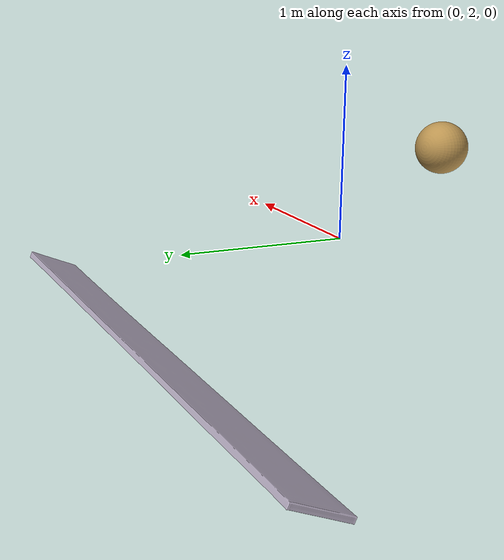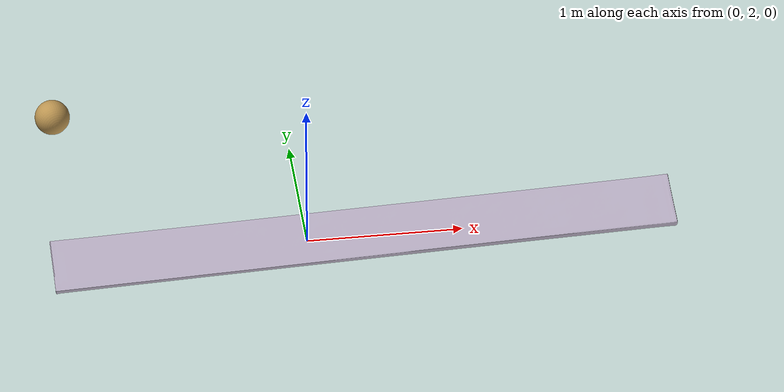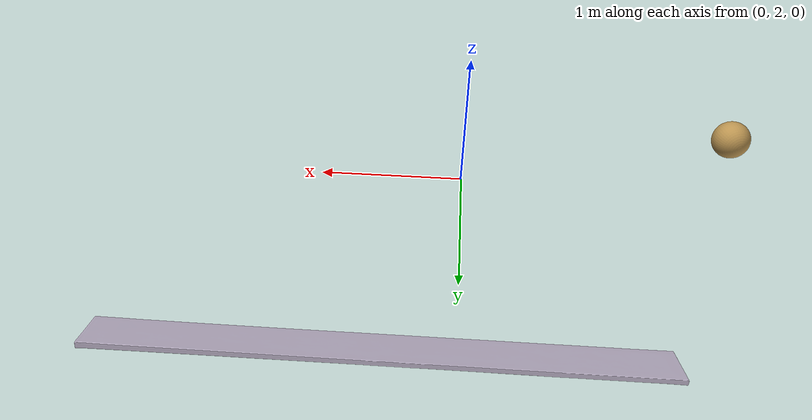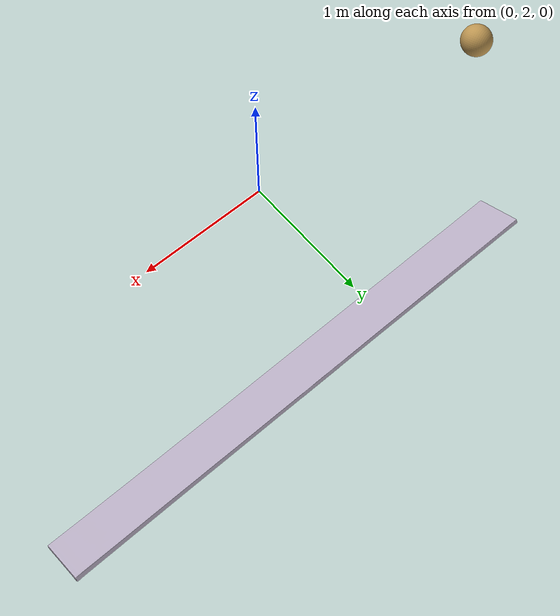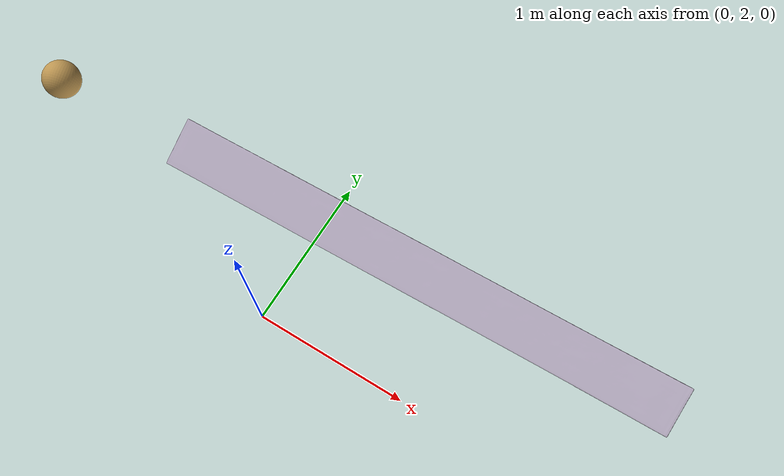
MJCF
<?xml version="1.0" encoding="utf-8"?>
<mujoco model="evolving_real2sim_scene">
  <compiler angle="radian" autolimits="true" balanceinertia="true"/>
  <option timestep="0.001" gravity="0 0 -9.22870497334" integrator="implicitfast" iterations="100"/>
  <visual>
    <global offwidth="960" offheight="540"/>
  </visual>
  <default>
    <geom condim="4" friction="0.6 0.01 0.001" solref="0.01 1"/>
  </default>
  <asset>
    <mesh name="ball_visual_mesh" file="assets/ball.obj" scale="0.896315557906 0.896315557906 0.896315557906"/>
    <mesh name="floor_visual_mesh" file="assets/floor.obj" scale="2.12412633114 1.38380563994 1.85392355585"/>
  </asset>
  <worldbody>
    <light name="key" pos="-4 -4 8" dir="0.4 0.4 -1" directional="true"/>
    <light name="fill" pos="4 -2 5" dir="-0.5 0.2 -1" directional="true"/>
    <body name="ball" pos="-1.56321579416 2.43124233553 0.810492215558" quat="0.659675077367 -0.665106156757 0.124007431916 0.327238062234">
      <freejoint name="ball_free"/>
      <geom name="ball_visual" type="mesh" mesh="ball_visual_mesh" rgba="0.741764705882 0.58862745098 0.321176470588 1" contype="0" conaffinity="0" density="0" group="0"/>
      <geom name="ball_collision" type="sphere" size="0.109802120103" rgba="0 0 0 0" group="3" friction="0 1e-05 1e-06" solref="-10000 -15.3401516893" priority="1" mass="3.67687896642"/>
    </body>
    <body name="floor" pos="0.0127435093746 2.67339301109 -0.700855016708" quat="0.979638270592 0.200228273686 -0.00844865004142 0.0120879080094">
      <geom name="floor_visual" type="mesh" mesh="floor_visual_mesh" rgba="0.722352941176 0.683529411765 0.765490196078 1" contype="0" conaffinity="0" density="0" group="0" pos="0.495189954615 0.268384660876 -0.170099013645"/>
      <geom name="floor_collision" type="box" pos="0.00179395194422 0.0328787523 0.0771177792771" quat="0.979710505521 -0.20013217453 0.0104811253598 -0.00214105125745" size="1.11144530773 0.339480757507 0.0153785748407" rgba="0 0 0 0" group="3" friction="0 1e-05 1e-06" solref="0.01 0.9"/>
    </body>
  </worldbody>
  <contact/>
</mujoco>
